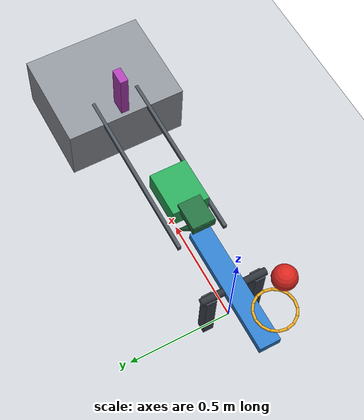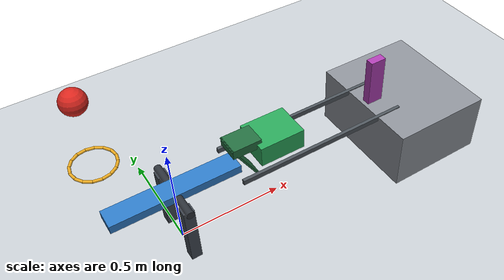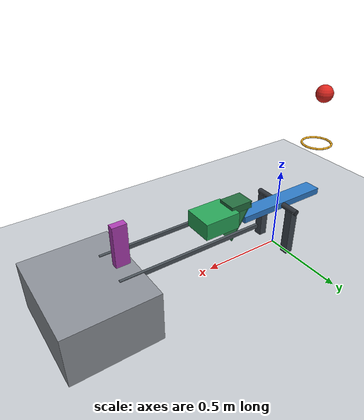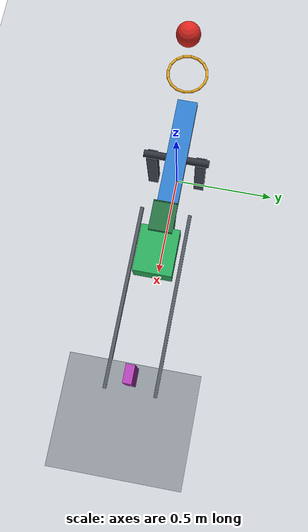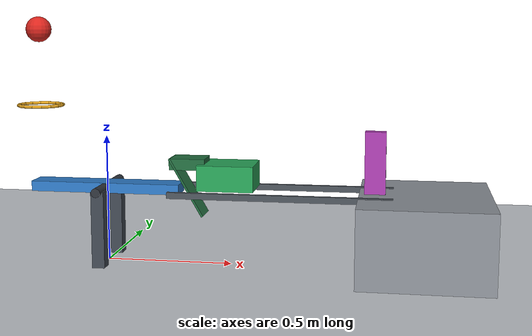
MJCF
<mujoco model="ball_ring_lever_cart_corrected">
  <compiler angle="degree" autolimits="true"/>
  <option timestep="0.002" gravity="0 0 -9.81" integrator="implicitfast" cone="elliptic" iterations="100"/>
  <size njmax="1000" nconmax="300"/>

  <!-- MuJoCo has compliant contacts, not a direct restitution attribute.
       The damping ratio below corresponds nominally to restitution 0.04. -->

  <visual>
    <headlight ambient="0.35 0.35 0.35" diffuse="0.75 0.75 0.75" specular="0.15 0.15 0.15"/>
    <global azimuth="135" elevation="-20"/>
  </visual>

  <worldbody>
    <light name="scene_light" pos="0 -2 3" dir="0 0 -1" directional="true"/>
    <camera name="overview" pos="1.9 -3.0 1.8" xyaxes="0.84 0.54 0 -0.20 0.31 0.93"/>

    <geom name="floor" type="plane" size="3 2 0.1" friction="0.72 0.005 0.002" condim="6" solref="0.008 0.716" solimp="0.95 0.99 0.001" rgba="0.78 0.80 0.82 1"/>

    <!-- Clear diameter is 0.160 m; outside diameter is approximately 0.187 m. -->
    <body name="ring1" pos="-0.27 0 0.62">
      <geom name="ring1_segment01" type="capsule" fromto="0.087685 0 0 0.081010 0.033556 0" size="0.006" friction="0.72 0.005 0.002" condim="6" solref="0.008 0.716" solimp="0.95 0.99 0.001" rgba="0.90 0.65 0.12 1"/>
      <geom name="ring1_segment02" type="capsule" fromto="0.081010 0.033556 0 0.062003 0.062003 0" size="0.006" friction="0.72 0.005 0.002" condim="6" solref="0.008 0.716" solimp="0.95 0.99 0.001" rgba="0.90 0.65 0.12 1"/>
      <geom name="ring1_segment03" type="capsule" fromto="0.062003 0.062003 0 0.033556 0.081010 0" size="0.006" friction="0.72 0.005 0.002" condim="6" solref="0.008 0.716" solimp="0.95 0.99 0.001" rgba="0.90 0.65 0.12 1"/>
      <geom name="ring1_segment04" type="capsule" fromto="0.033556 0.081010 0 0 0.087685 0" size="0.006" friction="0.72 0.005 0.002" condim="6" solref="0.008 0.716" solimp="0.95 0.99 0.001" rgba="0.90 0.65 0.12 1"/>
      <geom name="ring1_segment05" type="capsule" fromto="0 0.087685 0 -0.033556 0.081010 0" size="0.006" friction="0.72 0.005 0.002" condim="6" solref="0.008 0.716" solimp="0.95 0.99 0.001" rgba="0.90 0.65 0.12 1"/>
      <geom name="ring1_segment06" type="capsule" fromto="-0.033556 0.081010 0 -0.062003 0.062003 0" size="0.006" friction="0.72 0.005 0.002" condim="6" solref="0.008 0.716" solimp="0.95 0.99 0.001" rgba="0.90 0.65 0.12 1"/>
      <geom name="ring1_segment07" type="capsule" fromto="-0.062003 0.062003 0 -0.081010 0.033556 0" size="0.006" friction="0.72 0.005 0.002" condim="6" solref="0.008 0.716" solimp="0.95 0.99 0.001" rgba="0.90 0.65 0.12 1"/>
      <geom name="ring1_segment08" type="capsule" fromto="-0.081010 0.033556 0 -0.087685 0 0" size="0.006" friction="0.72 0.005 0.002" condim="6" solref="0.008 0.716" solimp="0.95 0.99 0.001" rgba="0.90 0.65 0.12 1"/>
      <geom name="ring1_segment09" type="capsule" fromto="-0.087685 0 0 -0.081010 -0.033556 0" size="0.006" friction="0.72 0.005 0.002" condim="6" solref="0.008 0.716" solimp="0.95 0.99 0.001" rgba="0.90 0.65 0.12 1"/>
      <geom name="ring1_segment10" type="capsule" fromto="-0.081010 -0.033556 0 -0.062003 -0.062003 0" size="0.006" friction="0.72 0.005 0.002" condim="6" solref="0.008 0.716" solimp="0.95 0.99 0.001" rgba="0.90 0.65 0.12 1"/>
      <geom name="ring1_segment11" type="capsule" fromto="-0.062003 -0.062003 0 -0.033556 -0.081010 0" size="0.006" friction="0.72 0.005 0.002" condim="6" solref="0.008 0.716" solimp="0.95 0.99 0.001" rgba="0.90 0.65 0.12 1"/>
      <geom name="ring1_segment12" type="capsule" fromto="-0.033556 -0.081010 0 0 -0.087685 0" size="0.006" friction="0.72 0.005 0.002" condim="6" solref="0.008 0.716" solimp="0.95 0.99 0.001" rgba="0.90 0.65 0.12 1"/>
      <geom name="ring1_segment13" type="capsule" fromto="0 -0.087685 0 0.033556 -0.081010 0" size="0.006" friction="0.72 0.005 0.002" condim="6" solref="0.008 0.716" solimp="0.95 0.99 0.001" rgba="0.90 0.65 0.12 1"/>
      <geom name="ring1_segment14" type="capsule" fromto="0.033556 -0.081010 0 0.062003 -0.062003 0" size="0.006" friction="0.72 0.005 0.002" condim="6" solref="0.008 0.716" solimp="0.95 0.99 0.001" rgba="0.90 0.65 0.12 1"/>
      <geom name="ring1_segment15" type="capsule" fromto="0.062003 -0.062003 0 0.081010 -0.033556 0" size="0.006" friction="0.72 0.005 0.002" condim="6" solref="0.008 0.716" solimp="0.95 0.99 0.001" rgba="0.90 0.65 0.12 1"/>
      <geom name="ring1_segment16" type="capsule" fromto="0.081010 -0.033556 0 0.087685 0 0" size="0.006" friction="0.72 0.005 0.002" condim="6" solref="0.008 0.716" solimp="0.95 0.99 0.001" rgba="0.90 0.65 0.12 1"/>
    </body>

    <!-- Ball-center distances: initially 0.30 m above the ring midplane;
         first lever contact occurs 0.25 m below that midplane. -->
    <body name="ball1" pos="-0.27 0 0.92">
      <freejoint name="ball1_free"/>
      <geom name="ball1_sphere" type="sphere" size="0.05" mass="0.20" friction="0.72 0.005 0.002" condim="6" solref="0.008 0.716" solimp="0.95 0.99 0.001" rgba="0.85 0.15 0.12 1"/>
    </body>

    <body name="lever_support" pos="0 0 0">
      <geom name="lever_support_post_left" type="box" pos="0 -0.12 0.15" size="0.025 0.025 0.15" friction="0.72 0.005 0.002" condim="6" solref="0.008 0.716" solimp="0.95 0.99 0.001" rgba="0.25 0.28 0.32 1"/>
      <geom name="lever_support_post_right" type="box" pos="0 0.12 0.15" size="0.025 0.025 0.15" friction="0.72 0.005 0.002" condim="6" solref="0.008 0.716" solimp="0.95 0.99 0.001" rgba="0.25 0.28 0.32 1"/>
      <geom name="lever_support_axle" type="cylinder" pos="0 0 0.30" quat="0.70710678 0.70710678 0 0" size="0.018 0.16" contype="0" conaffinity="0" rgba="0.18 0.20 0.23 1"/>
    </body>

    <body name="lever1" pos="0 0 0.30">
      <inertial pos="0 0 0.008" mass="0.50" diaginertia="0.000451333 0.015034667 0.015416667"/>
      <joint name="lever1_hinge" type="hinge" axis="0 -1 0" range="0 45" damping="0.04" solreflimit="0.004 1" solimplimit="0.99 0.999 0.0001"/>
      <geom name="lever1_beam" type="box" size="0.30 0.05 0.02" mass="0" friction="0.72 0.005 0.002" condim="6" solref="0.008 0.716" solimp="0.95 0.99 0.001" rgba="0.18 0.48 0.78 1"/>
    </body>

    <body name="cart_track" pos="0.70 0 0.292">
      <geom name="cart_track_rail_left" type="box" pos="0 -0.115 0" size="0.43 0.008 0.012" contype="0" conaffinity="0" rgba="0.30 0.33 0.36 1"/>
      <geom name="cart_track_rail_right" type="box" pos="0 0.115 0" size="0.43 0.008 0.012" contype="0" conaffinity="0" rgba="0.30 0.33 0.36 1"/>
    </body>

    <!-- Prescribed chassis dimensions, with an attached angled striker.
         Total moving cart mass, including its attachments, is 0.50 kg. -->
    <body name="cart1" pos="0.49 0 0.355">
      <inertial pos="0 0 0" mass="0.50" diaginertia="0.001766667 0.002433333 0.003366667"/>
      <joint name="cart1_slide" type="slide" axis="1 0 0" range="0 0.42" damping="0.20" solreflimit="0.008 1" solimplimit="0.95 0.99 0.001"/>
      <geom name="cart1_chassis" type="box" size="0.11 0.09 0.05" mass="0" friction="0.72 0.005 0.002" condim="6" solref="0.008 0.716" solimp="0.95 0.99 0.001" rgba="0.16 0.65 0.35 1"/>
      <geom name="cart1_striker" type="box" pos="-0.16 0 -0.045" euler="0 60 0" size="0.13 0.055 0.004" mass="0" friction="0.72 0.005 0.002" condim="6" solref="0.008 0.716" solimp="0.95 0.99 0.001" rgba="0.14 0.43 0.25 1"/>
      <geom name="cart1_striker_bracket" type="box" pos="-0.155 0 0.047" size="0.07 0.055 0.022" mass="0" contype="0" conaffinity="0" rgba="0.14 0.43 0.25 1"/>
    </body>

    <!-- Platform begins at x=1.00, beyond the striker's entire travel.
         Its top is 5 mm below the cart chassis bottom. -->
    <body name="domino_platform" pos="1.25 0 0.15">
      <geom name="domino_platform_top" type="box" size="0.25 0.30 0.15" friction="0.72 0.005 0.002" condim="6" solref="0.008 0.716" solimp="0.95 0.99 0.001" rgba="0.55 0.57 0.60 1"/>
    </body>

    <!-- Initial cart front x=0.60; domino rear x=1.02.
         Chassis contact therefore occurs after 0.42 m of slide travel. -->
    <body name="domino1" pos="1.06 0 0.42">
      <freejoint name="domino1_free"/>
      <geom name="domino1_block" type="box" size="0.04 0.02 0.12" mass="0.25" friction="0.72 0.005 0.002" condim="6" solref="0.008 0.716" solimp="0.95 0.99 0.001" rgba="0.68 0.24 0.70 1"/>
    </body>
  </worldbody>

  <keyframe>
    <key name="start" qpos="-0.27 0 0.92 1 0 0 0 0 0 1.06 0 0.42 1 0 0 0" qvel="0 0 0 0 0 0 0 0 0 0 0 0 0 0"/>
  </keyframe>
</mujoco>
